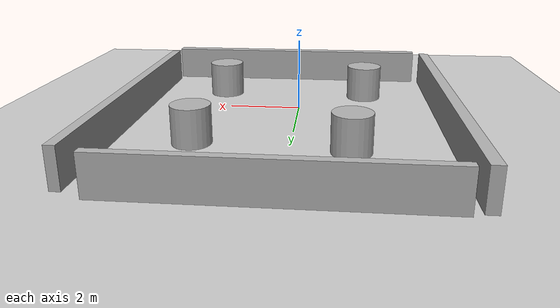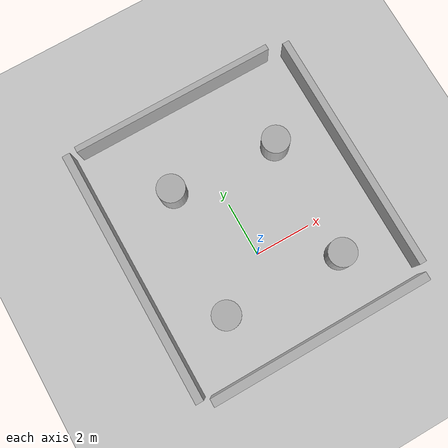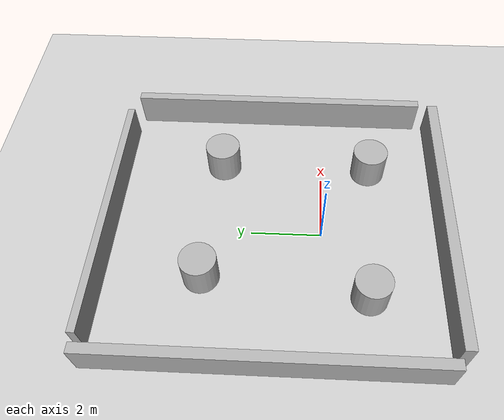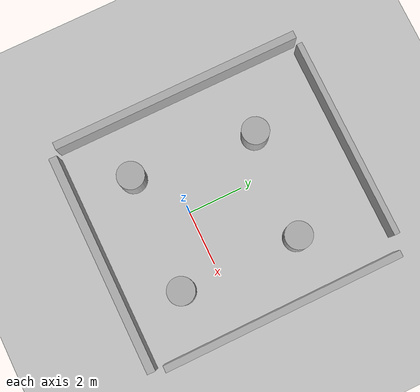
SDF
<?xml version="1.0"?>
<sdf version="1.9">
  <world name="vmegarover_sample">
    <physics name='1ms' type='ignored'>
      <max_step_size>0.001</max_step_size>
      <real_time_factor>1</real_time_factor>
      <real_time_update_rate>1000</real_time_update_rate>
    </physics>
    <plugin name='gz::sim::systems::Physics' filename='ignition-gazebo-physics-system'/>
    <plugin name='gz::sim::systems::UserCommands' filename='ignition-gazebo-user-commands-system'/>
    <plugin name='gz::sim::systems::SceneBroadcaster' filename='ignition-gazebo-scene-broadcaster-system'/>
    <plugin name='gz::sim::systems::Contact' filename='ignition-gazebo-contact-system'/>
    <plugin
      filename="ignition-gazebo-sensors-system"
      name="ignition::gazebo::systems::Sensors">
      <render_engine>ogre</render_engine>
    </plugin>
    <gravity>0 0 -9.8</gravity>
    <magnetic_field>6e-06 2.3e-05 -4.2e-05</magnetic_field>
    <atmosphere type='adiabatic'/>
    <scene>
      <ambient>0.4 0.4 0.4 1</ambient>
      <background>0.7 0.7 0.7 1</background>
      <shadows>true</shadows>
    </scene>
    <!-- Syn -->
    <light type="directional" name="sun">
      <cast_shadows>true</cast_shadows>
      <pose>0 0 10 0 0 0</pose>
      <diffuse>0.8 0.8 0.8 1</diffuse>
      <specular>0.2 0.2 0.2 1</specular>
      <attenuation>
        <range>1000</range>
        <constant>0.9</constant>
        <linear>0.01</linear>
        <quadratic>0.001</quadratic>
      </attenuation>
      <direction>-0.5 0.1 -0.9</direction>
    </light>
    <!-- Ground Plane -->
    <model name='ground_plane'>
      <static>true</static>
      <link name='link'>
        <collision name='collision'>
          <geometry>
            <plane>
              <normal>0 0 1</normal>
              <size>100 100</size>
            </plane>
          </geometry>
          <surface>
            <friction>
              <ode/>
            </friction>
            <bounce/>
            <contact/>
          </surface>
        </collision>
        <visual name='visual'>
          <geometry>
            <plane>
              <normal>0 0 1</normal>
              <size>100 100</size>
            </plane>
          </geometry>
          <material>
            <ambient>0.8 0.8 0.8 1</ambient>
            <diffuse>0.8 0.8 0.8 1</diffuse>
            <specular>0.8 0.8 0.8 1</specular>
          </material>
        </visual>
      </link>
      <self_collide>false</self_collide>
    </model>
    <!-- Walls -->
    <model name='wall_0'>
      <static>true</static>
      <pose>-3.98429 1.39508 0.5 0 -0 0</pose>
      <link name='wall_0_link'>
        <collision name='wall_0_collision'>
          <geometry>
            <box>
              <size>0.285616 9.2507 1</size>
            </box>
          </geometry>
          <surface>
            <friction>
              <ode/>
            </friction>
            <bounce/>
            <contact/>
          </surface>
        </collision>
        <visual name='wall_0_visual'>
          <geometry>
            <box>
              <size>0.285616 9.2507 1</size>
            </box>
          </geometry>
          <material>
            <ambient>0.3 0.3 0.3 1</ambient>
            <diffuse>0.7 0.7 0.7 1</diffuse>
            <specular>1 1 1 1</specular>
          </material>
        </visual>
      </link>
    </model>
    <model name='wall_1'>
      <static>true</static>
      <pose>4.47107 1.4204 0.5 0 -0 0</pose>
      <link name='wall_1_link'>
        <collision name='wall_1_collision'>
          <geometry>
            <box>
              <size>0.255907 8.84306 1</size>
            </box>
          </geometry>
          <surface>
            <friction>
              <ode/>
            </friction>
            <bounce/>
            <contact/>
          </surface>
        </collision>
        <visual name='wall_1_visual'>
          <geometry>
            <box>
              <size>0.255907 8.84306 1</size>
            </box>
          </geometry>
          <material>
            <ambient>0.3 0.3 0.3 1</ambient>
            <diffuse>0.7 0.7 0.7 1</diffuse>
            <specular>1 1 1 1</specular>
          </material>
        </visual>
      </link>
    </model>
    <model name='wall_2'>
      <static>true</static>
      <pose>0.105381 6.01452 0.500023 -1e-05 0 0</pose>
      <link name='wall_2_link'>
        <collision name='wall_2_collision'>
          <geometry>
            <box>
              <size>7.44286 0.210664 1</size>
            </box>
          </geometry>
          <surface>
            <friction>
              <ode/>
            </friction>
            <bounce/>
            <contact/>
          </surface>
        </collision>
        <visual name='wall_2_visual'>
          <geometry>
            <box>
              <size>7.44286 0.210664 1</size>
            </box>
          </geometry>
          <material>
            <ambient>0.3 0.3 0.3 1</ambient>
            <diffuse>0.7 0.7 0.7 1</diffuse>
            <specular>1 1 1 1</specular>
          </material>
        </visual>
      </link>
    </model>
    <model name='wall_3'>
      <static>true</static>
      <pose>0.367033 -3.43294 0.5 0 -0 0</pose>
      <link name='wall_3_link'>
        <collision name='wall_3_collision'>
          <geometry>
            <box>
              <size>8.04237 0.302729 1</size>
            </box>
          </geometry>
          <surface>
            <friction>
              <ode/>
            </friction>
            <bounce/>
            <contact/>
          </surface>
        </collision>
        <visual name='wall_3_visual'>
          <geometry>
            <box>
              <size>8.04237 0.302729 1</size>
            </box>
          </geometry>
          <material>
            <ambient>0.3 0.3 0.3 1</ambient>
            <diffuse>0.7 0.7 0.7 1</diffuse>
            <specular>1 1 1 1</specular>
          </material>
        </visual>
      </link>
    </model>
    <!-- Cylinders -->
    <model name='cylinder_0'>
      <static>true</static>
      <pose>2.41806 2.99539 0.499999 3e-06 -2e-06 0</pose>
      <link name='cylinder_0_link'>
        <collision name='cylinder_0_collision'>
          <geometry>
            <cylinder>
              <radius>0.5</radius>
              <length>1</length>
            </cylinder>
          </geometry>
          <surface>
            <friction>
              <ode/>
            </friction>
            <bounce/>
            <contact/>
          </surface>
        </collision>
        <visual name='cylinder_0_visual'>
          <geometry>
            <cylinder>
              <radius>0.5</radius>
              <length>1</length>
            </cylinder>
          </geometry>
          <material>
            <ambient>0.3 0.3 0.3 1</ambient>
            <diffuse>0.7 0.7 0.7 1</diffuse>
            <specular>1 1 1 1</specular>
          </material>
        </visual>
      </link>
    </model>
    <model name='cylinder_1'>
      <static>true</static>
      <pose>-1.47419 3.26413 0.499998 3e-06 3e-06 0</pose>
      <link name='cylinder_1_link'>
        <collision name='cylinder_1_collision'>
          <geometry>
            <cylinder>
              <radius>0.5</radius>
              <length>1</length>
            </cylinder>
          </geometry>
          <surface>
            <friction>
              <ode/>
            </friction>
            <bounce/>
            <contact/>
          </surface>
        </collision>
        <visual name='cylinder_1_visual'>
          <geometry>
            <cylinder>
              <radius>0.5</radius>
              <length>1</length>
            </cylinder>
          </geometry>
          <material>
            <ambient>0.3 0.3 0.3 1</ambient>
            <diffuse>0.7 0.7 0.7 1</diffuse>
            <specular>1 1 1 1</specular>
          </material>
        </visual>
      </link>
    </model>
    <model name='cylinder_2'>
      <static>true</static>
      <pose>-1.92344 -1.28292 0.499993 -3e-06 3e-06 0</pose>
      <link name='cylinder_2_link'>
        <collision name='cylinder_2_collision'>
          <geometry>
            <cylinder>
              <radius>0.5</radius>
              <length>1</length>
            </cylinder>
          </geometry>
          <surface>
            <friction>
              <ode/>
            </friction>
            <bounce/>
            <contact/>
          </surface>
        </collision>
        <visual name='cylinder_2_visual'>
          <geometry>
            <cylinder>
              <radius>0.5</radius>
              <length>1</length>
            </cylinder>
          </geometry>
          <material>
            <ambient>0.3 0.3 0.3 1</ambient>
            <diffuse>0.7 0.7 0.7 1</diffuse>
            <specular>1 1 1 1</specular>
          </material>
        </visual>
      </link>
    </model>
    <model name='cylinder_3'>
      <static>true</static>
      <pose>2.38073 -1.40372 0.499994 -3e-06 2e-06 0</pose>
      <link name='cylinder_3_link'>
        <collision name='cylinder_3_collision'>
          <geometry>
            <cylinder>
              <radius>0.5</radius>
              <length>1</length>
            </cylinder>
          </geometry>
          <surface>
            <friction>
              <ode/>
            </friction>
            <bounce/>
            <contact/>
          </surface>
        </collision>
        <visual name='cylinder_3_visual'>
          <geometry>
            <cylinder>
              <radius>0.5</radius>
              <length>1</length>
            </cylinder>
          </geometry>
          <material>
            <ambient>0.3 0.3 0.3 1</ambient>
            <diffuse>0.7 0.7 0.7 1</diffuse>
            <specular>1 1 1 1</specular>
          </material>
        </visual>
      </link>
    </model>
  </world>
</sdf>
